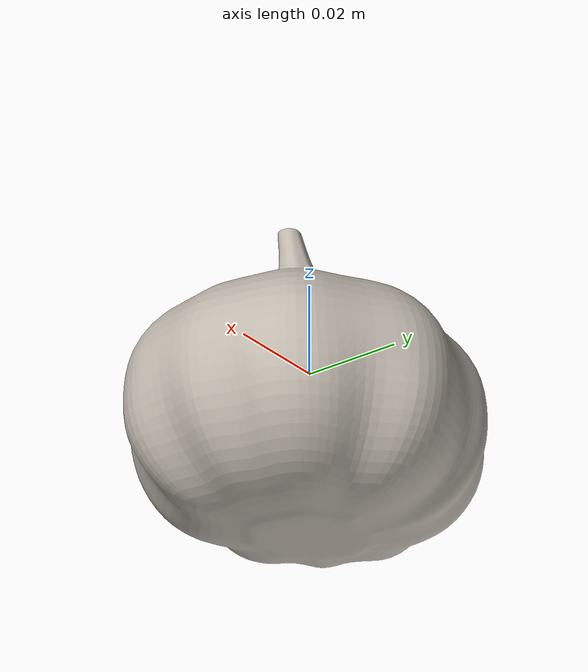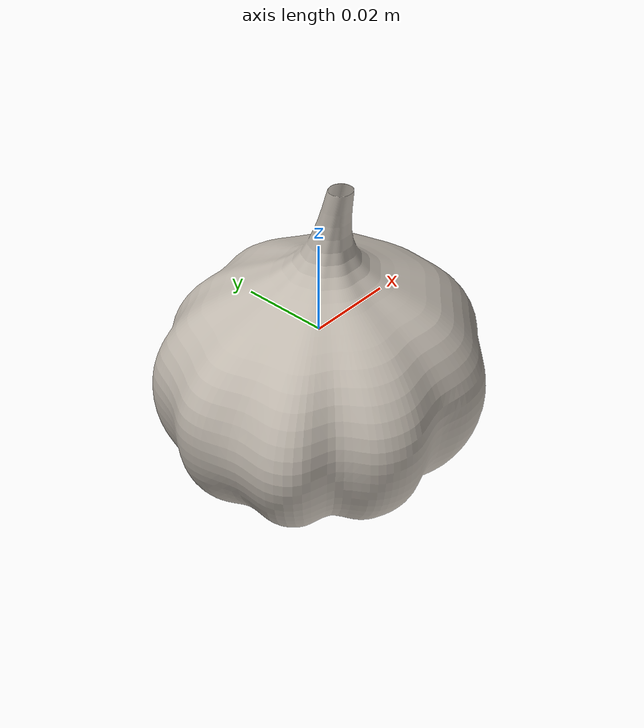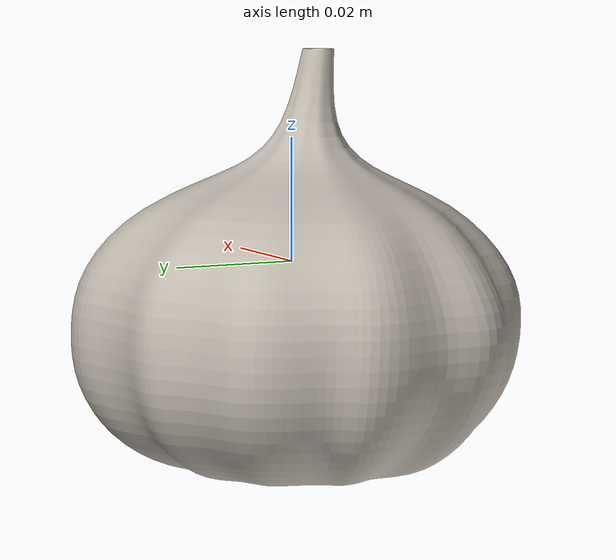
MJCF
<mujoco model="garlic">
    <compiler angle="radian" meshdir="../meshes/" texturedir="../textures/" autolimits="true" inertiafromgeom="false"/>
    <asset>
        <mesh name="GarlicPeel" file="obj/GarlicPeel.obj" />
        <material name="M_GarlicPeel" texture="T_GarlicPeel"/>
		<texture name="T_GarlicPeel" type="2d" file="T_GarlicPeel.png"/>
    </asset>
    <worldbody>
        <body name="garlic">
            <freejoint />
            <inertial mass="0.0014464312698692083" pos="0.00018170643306802958 -0.0004646391316782683 -0.01180169079452753" quat="0.5680236220359802 -0.39492714405059814 -0.5592508316040039 -0.4567495882511139" diaginertia="1.0450033869346953e-06 1.0729197583714267e-06 1.136542209678737e-06"/>
            <geom name="Garlic" pos="0.0 0.0 0.0" quat="1.0 0.0 0.0 0.0" type="mesh" mesh="GarlicPeel" material="M_GarlicPeel"/>
        </body>
    </worldbody>
    <equality />
    <contact />
</mujoco>
